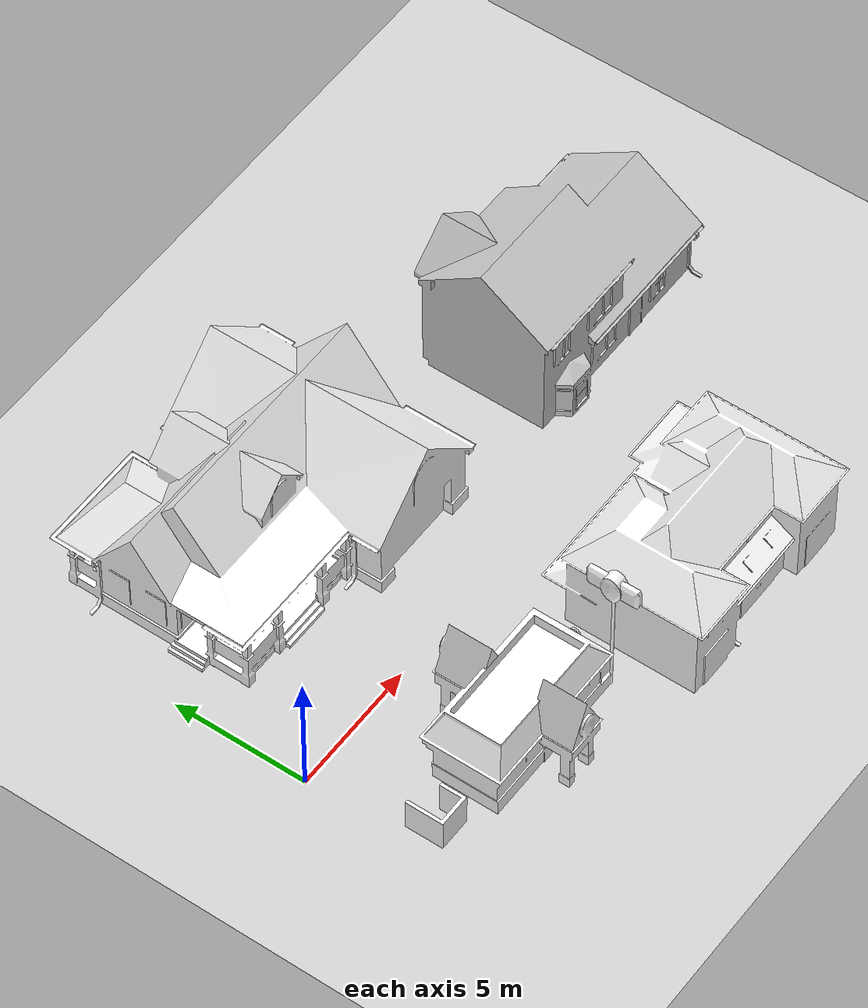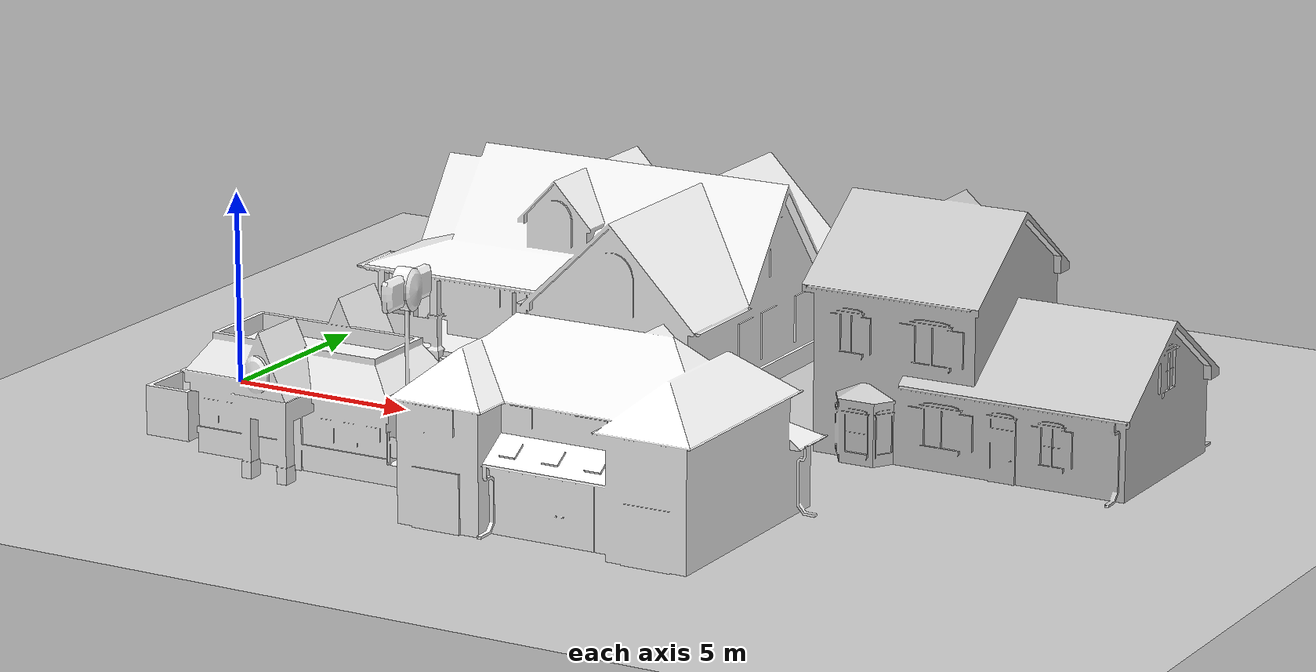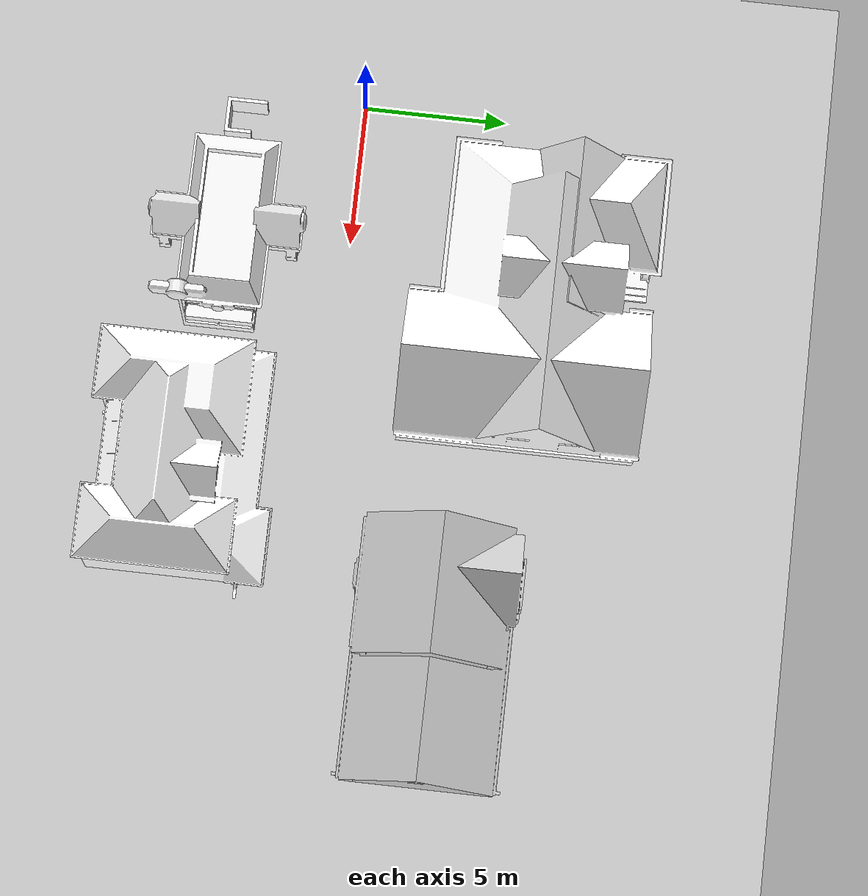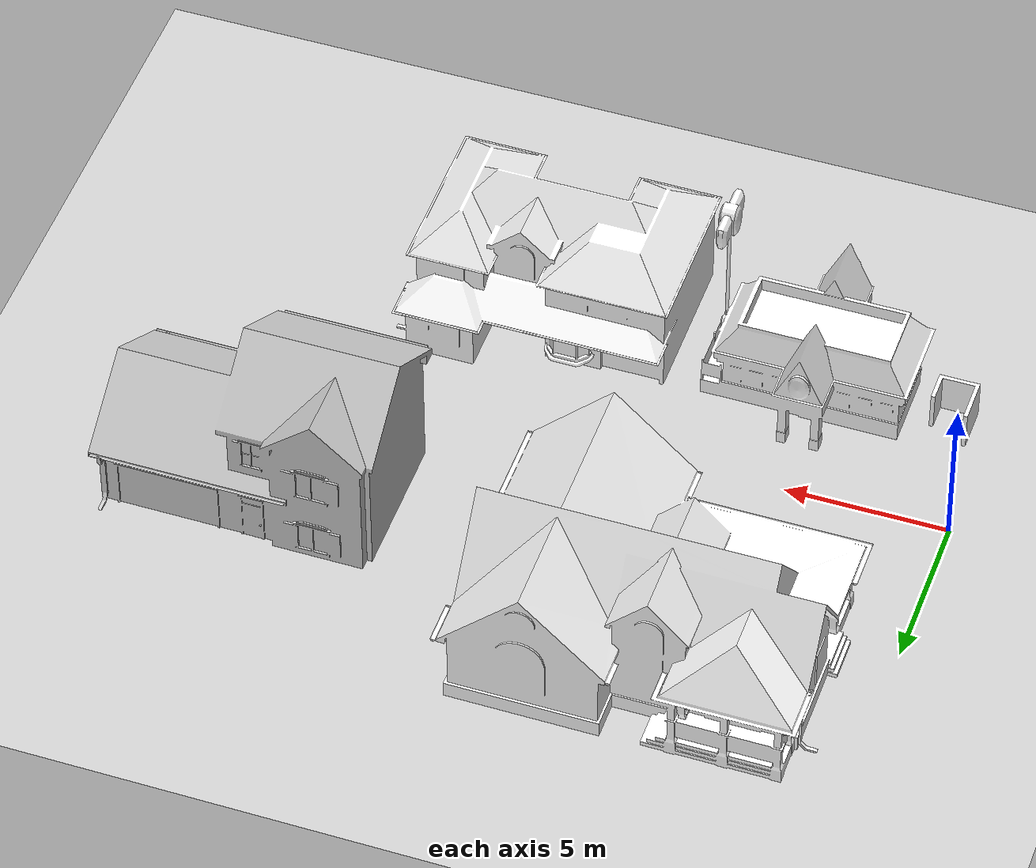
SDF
<sdf version="1.4">
 <world name="myworld">
  <model name="ground_plane">
   <static>1</static>
   <link name="link">
    <collision name="collision">
     <geometry><plane><normal>0 0 1</normal><size>100 100</size></plane></geometry>
     <surface><friction><ode><mu>100</mu><mu2>50</mu2></ode></friction></surface>
    </collision>
    <visual name="visual">
     <cast_shadows>0</cast_shadows>
     <geometry><plane><normal>0 0 1</normal><size>100 100</size></plane></geometry>
     <material>
      <script><uri>file://media/materials/scripts/gazebo.material</uri><name>Gazebo/Grey</name></script>
     </material>
    </visual>
    <velocity_decay><linear>0</linear><angular>0</angular></velocity_decay>
   </link>
  </model>
  <light name="sun" type="directional">
   <pose>0 0 10 0 -0 0</pose>
   <diffuse>0.8 0.8 0.8 1</diffuse>
   <specular>0.2 0.2 0.2 1</specular>
   <attenuation>
    <range>1000</range>
    <constant>0.9</constant>
    <linear>0.01</linear>
    <quadratic>0.001</quadratic>
   </attenuation>
   <direction>-0.5 0.1 -0.9</direction>
  </light>
  <model name="Fast Food">
   <pose>5.1828 -4.23071 0 0 -0 0</pose>
   <static>1</static>
   <link name="link">
    <pose>0 0 1.57966 0 -0 0</pose>
    <collision name="collision">
     <geometry><mesh><uri>model://fast_food/meshes/fast_food.dae</uri></mesh></geometry>
    </collision>
    <visual name="visual">
     <geometry><mesh><uri>model://fast_food/meshes/fast_food.dae</uri></mesh></geometry>
     <material>
      <script>
       <uri>model://fast_food/materials/scripts</uri>
       <uri>model://fast_food/materials/textures</uri>
       <name>FastFood/Diffuse</name>
      </script>
      <shader type="normal_map_object_space"><normal_map>FastFood_Normal.png</normal_map></shader>
     </material>
    </visual>
    <velocity_decay><linear>0</linear><angular>0</angular></velocity_decay>
   </link>
  </model>
  <model name="House 1">
   <pose>6.94681 6.83504 0 0 -0 0</pose>
   <static>1</static>
   <link name="link">
    <collision name="collision">
     <geometry><mesh><uri>model://house_1/meshes/house_1.dae</uri></mesh></geometry>
    </collision>
    <visual name="visual">
     <geometry><mesh><uri>model://house_1/meshes/house_1.dae</uri></mesh></geometry>
     <material>
      <script>
       <uri>model://house_1/materials/scripts</uri>
       <uri>model://house_1/materials/textures</uri>
       <name>House_1/Diffuse</name>
      </script>
      <shader type="normal_map_object_space"><normal_map>House_1_Normal.png</normal_map></shader>
     </material>
    </visual>
    <velocity_decay><linear>0</linear><angular>0</angular></velocity_decay>
   </link>
  </model>
  <model name="House 2">
   <pose>12.9979 -5.30127 0 0 -0 0</pose>
   <static>1</static>
   <link name="link">
    <collision name="collision">
     <geometry><mesh><uri>model://house_2/meshes/house_2.dae</uri></mesh></geometry>
    </collision>
    <visual name="visual">
     <geometry><mesh><uri>model://house_2/meshes/house_2.dae</uri></mesh></geometry>
     <material>
      <script>
       <uri>model://house_2/materials/scripts</uri>
       <uri>model://house_2/materials/textures</uri>
       <uri>model://house_1/materials/textures</uri>
       <name>House_2/Diffuse</name>
      </script>
      <shader type="normal_map_object_space">
       <normal_map>model://house_1/materials/textures/House_1_Normal.png</normal_map>
      </shader>
     </material>
    </visual>
    <velocity_decay><linear>0</linear><angular>0</angular></velocity_decay>
   </link>
  </model>
  <model name="House 3">
   <pose>20.0134 4.38288 0 0 -0 0</pose>
   <static>1</static>
   <link name="link">
    <collision name="collision">
     <geometry><mesh><uri>model://house_3/meshes/house_3.dae</uri></mesh></geometry>
    </collision>
    <visual name="visual">
     <geometry><mesh><uri>model://house_3/meshes/house_3.dae</uri></mesh></geometry>
     <material>
      <script>
       <uri>model://house_3/materials/scripts</uri>
       <uri>model://house_3/materials/textures</uri>
       <uri>model://house_1/materials/textures</uri>
       <name>House_3/Diffuse</name>
      </script>
      <shader type="normal_map_object_space">
       <normal_map>model://house_1/materials/textures/House_1_Normal.png</normal_map>
      </shader>
     </material>
    </visual>
    <velocity_decay><linear>0</linear><angular>0</angular></velocity_decay>
   </link>
  </model>
  <physics type="ode">
   <max_step_size>0.001</max_step_size>
   <real_time_factor>1</real_time_factor>
   <real_time_update_rate>1000</real_time_update_rate>
   <gravity>0 0 -9.8</gravity>
  </physics>
  <scene><ambient>0.4 0.4 0.4 1</ambient><background>0.7 0.7 0.7 1</background><shadows>1</shadows></scene>
  <spherical_coordinates>
   <surface_model>EARTH_WGS84</surface_model>
   <latitude_deg>0</latitude_deg>
   <longitude_deg>0</longitude_deg>
   <elevation>0</elevation>
   <heading_deg>0</heading_deg>
  </spherical_coordinates>
 </world>
</sdf>
